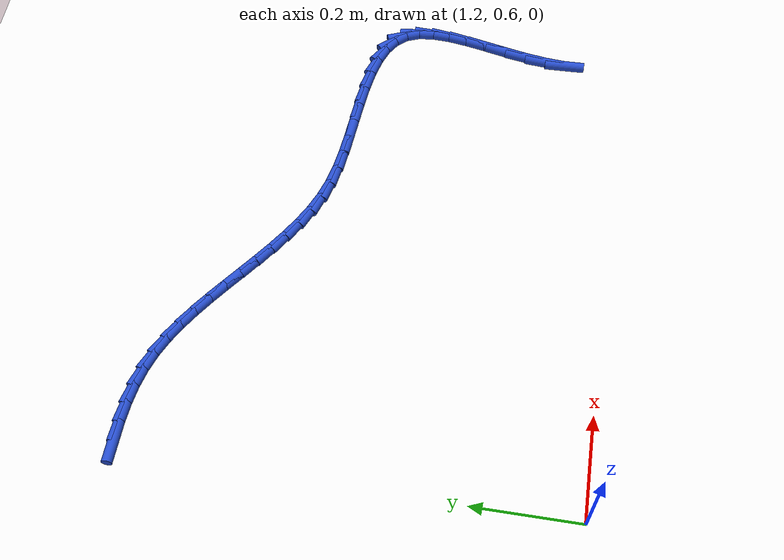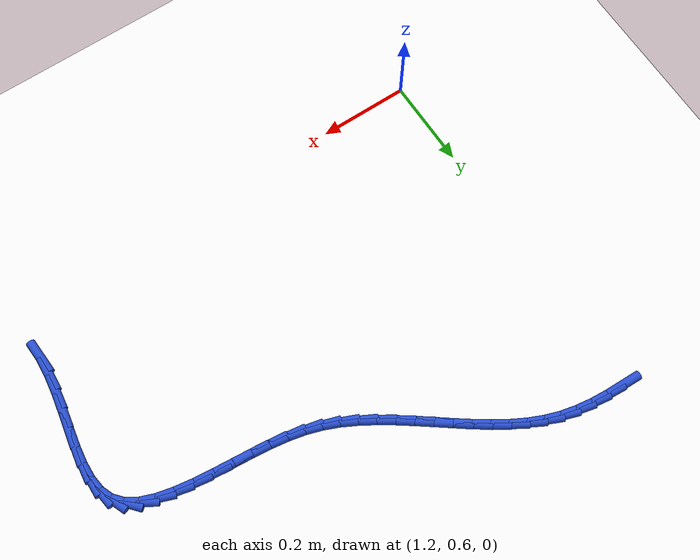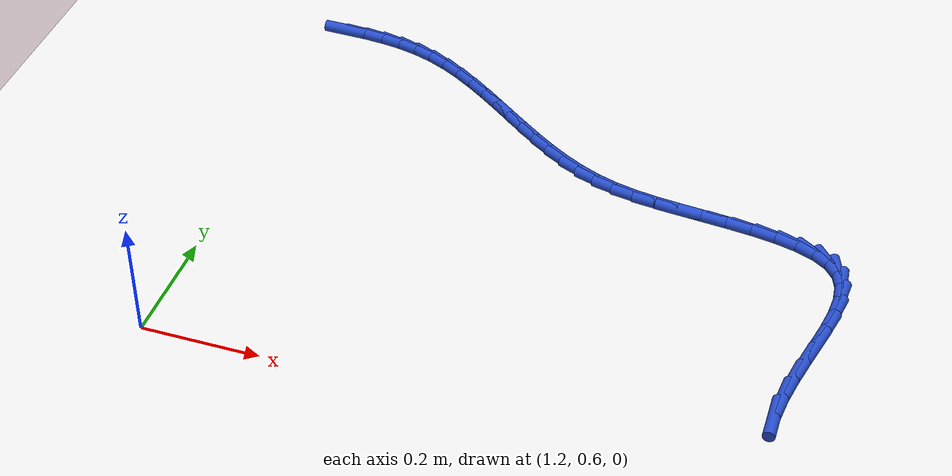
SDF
<sdf version="1.6">
 <world name="default">
  <model name="ground_plane">
   <static>1</static>
   <link name="link">
    <collision name="collision">
     <geometry><plane><normal>0 0 1</normal><size>100 100</size></plane></geometry>
     <surface><friction><ode><mu>100</mu><mu2>50</mu2></ode></friction></surface>
    </collision>
    <visual name="visual">
     <cast_shadows>0</cast_shadows>
     <geometry><plane><normal>0 0 1</normal><size>100 100</size></plane></geometry>
     <material>
      <script><uri>file://media/materials/scripts/gazebo.material</uri><name>Gazebo/WhiteGlow</name></script>
     </material>
    </visual>
   </link>
  </model>
  <model name="line">
   <link name="link_57">
    <pose>1.214163440559218 1.4207743845941585 0.01 0 1.57 -0.021638825132130456</pose>
    <collision name="collision">
     <geometry><cylinder><radius>0.01</radius><length>0.08</length></cylinder></geometry>
    </collision>
    <visual name="visual">
     <material>
      <script><name>Gazebo/Blue</name><uri>file://media/materials/scripts/gazebo.material</uri></script>
     </material>
     <geometry><cylinder><radius>0.01</radius><length>0.08</length></cylinder></geometry>
    </visual>
   </link>
   <link name="link_58">
    <pose>1.2526661764890905 1.4199411005615779 0.01 0 1.57 -0.07604416616218247</pose>
    <collision name="collision">
     <geometry><cylinder><radius>0.01</radius><length>0.08</length></cylinder></geometry>
    </collision>
    <visual name="visual">
     <material>
      <script><name>Gazebo/Blue</name><uri>file://media/materials/scripts/gazebo.material</uri></script>
     </material>
     <geometry><cylinder><radius>0.01</radius><length>0.08</length></cylinder></geometry>
    </visual>
   </link>
   <link name="link_59">
    <pose>1.2893979614746258 1.4171424659509002 0.01 0 1.57 -0.1457865926980805</pose>
    <collision name="collision">
     <geometry><cylinder><radius>0.01</radius><length>0.08</length></cylinder></geometry>
    </collision>
    <visual name="visual">
     <material>
      <script><name>Gazebo/Blue</name><uri>file://media/materials/scripts/gazebo.material</uri></script>
     </material>
     <geometry><cylinder><radius>0.01</radius><length>0.08</length></cylinder></geometry>
    </visual>
   </link>
   <link name="link_60">
    <pose>1.3246341572912177 1.4119687957187745 0.01 0 1.57 -0.22982657658886604</pose>
    <collision name="collision">
     <geometry><cylinder><radius>0.01</radius><length>0.08</length></cylinder></geometry>
    </collision>
    <visual name="visual">
     <material>
      <script><name>Gazebo/Blue</name><uri>file://media/materials/scripts/gazebo.material</uri></script>
     </material>
     <geometry><cylinder><radius>0.01</radius><length>0.08</length></cylinder></geometry>
    </visual>
   </link>
   <link name="link_61">
    <pose>1.3586501257142614 1.4040104048218491 0.01 0 1.57 -0.32525071271518846</pose>
    <collision name="collision">
     <geometry><cylinder><radius>0.01</radius><length>0.08</length></cylinder></geometry>
    </collision>
    <visual name="visual">
     <material>
      <script><name>Gazebo/Blue</name><uri>file://media/materials/scripts/gazebo.material</uri></script>
     </material>
     <geometry><cylinder><radius>0.01</radius><length>0.08</length></cylinder></geometry>
    </visual>
   </link>
   <link name="link_62">
    <pose>1.3917211790418753 1.392857954150063 0.01 0 1.57 -0.42168953792731234</pose>
    <collision name="collision">
     <geometry><cylinder><radius>0.01</radius><length>0.08</length></cylinder></geometry>
    </collision>
    <visual name="visual">
     <material>
      <script><name>Gazebo/Blue</name><uri>file://media/materials/scripts/gazebo.material</uri></script>
     </material>
     <geometry><cylinder><radius>0.01</radius><length>0.08</length></cylinder></geometry>
    </visual>
   </link>
   <link name="link_63">
    <pose>1.424088924020396 1.3783377657619418 0.01 0 1.57 -0.5008743759767215</pose>
    <collision name="collision">
     <geometry><cylinder><radius>0.01</radius><length>0.08</length></cylinder></geometry>
    </collision>
    <visual name="visual">
     <material>
      <script><name>Gazebo/Blue</name><uri>file://media/materials/scripts/gazebo.material</uri></script>
     </material>
     <geometry><cylinder><radius>0.01</radius><length>0.08</length></cylinder></geometry>
    </visual>
   </link>
   <link name="link_64">
    <pose>1.455902636222606 1.360921719231152 0.01 0 1.57 -0.5611075231553009</pose>
    <collision name="collision">
     <geometry><cylinder><radius>0.01</radius><length>0.08</length></cylinder></geometry>
    </collision>
    <visual name="visual">
     <material>
      <script><name>Gazebo/Blue</name><uri>file://media/materials/scripts/gazebo.material</uri></script>
     </material>
     <geometry><cylinder><radius>0.01</radius><length>0.08</length></cylinder></geometry>
    </visual>
   </link>
   <link name="link_65">
    <pose>1.4872959228110223 1.3411912439140503 0.01 0 1.57 -0.6039832337709676</pose>
    <collision name="collision">
     <geometry><cylinder><radius>0.01</radius><length>0.08</length></cylinder></geometry>
    </collision>
    <visual name="visual">
     <material>
      <script><name>Gazebo/Blue</name><uri>file://media/materials/scripts/gazebo.material</uri></script>
     </material>
     <geometry><cylinder><radius>0.01</radius><length>0.08</length></cylinder></geometry>
    </visual>
   </link>
   <link name="link_66">
    <pose>1.518402390948162 1.3197277691669929 0.01 0 1.57 -0.6309816007855725</pose>
    <collision name="collision">
     <geometry><cylinder><radius>0.01</radius><length>0.08</length></cylinder></geometry>
    </collision>
    <visual name="visual">
     <material>
      <script><name>Gazebo/Blue</name><uri>file://media/materials/scripts/gazebo.material</uri></script>
     </material>
     <geometry><cylinder><radius>0.01</radius><length>0.08</length></cylinder></geometry>
    </visual>
   </link>
   <link name="link_67">
    <pose>1.549355647796541 1.297112724346337 0.01 0 1.57 -0.6431895771016136</pose>
    <collision name="collision">
     <geometry><cylinder><radius>0.01</radius><length>0.08</length></cylinder></geometry>
    </collision>
    <visual name="visual">
     <material>
      <script><name>Gazebo/Blue</name><uri>file://media/materials/scripts/gazebo.material</uri></script>
     </material>
     <geometry><cylinder><radius>0.01</radius><length>0.08</length></cylinder></geometry>
    </visual>
   </link>
   <link name="link_68">
    <pose>1.5802893005186762 1.2739275388084388 0.01 0 1.57 -0.6411916072646232</pose>
    <collision name="collision">
     <geometry><cylinder><radius>0.01</radius><length>0.08</length></cylinder></geometry>
    </collision>
    <visual name="visual">
     <material>
      <script><name>Gazebo/Blue</name><uri>file://media/materials/scripts/gazebo.material</uri></script>
     </material>
     <geometry><cylinder><radius>0.01</radius><length>0.08</length></cylinder></geometry>
    </visual>
   </link>
   <link name="link_69">
    <pose>1.611336956277084 1.2507536419096557 0.01 0 1.57 -0.625044790131475</pose>
    <collision name="collision">
     <geometry><cylinder><radius>0.01</radius><length>0.08</length></cylinder></geometry>
    </collision>
    <visual name="visual">
     <material>
      <script><name>Gazebo/Blue</name><uri>file://media/materials/scripts/gazebo.material</uri></script>
     </material>
     <geometry><cylinder><radius>0.01</radius><length>0.08</length></cylinder></geometry>
    </visual>
   </link>
   <link name="link_70">
    <pose>1.6426322222342817 1.2281724630063429 0.01 0 1.57 -0.5943004446333864</pose>
    <collision name="collision">
     <geometry><cylinder><radius>0.01</radius><length>0.08</length></cylinder></geometry>
    </collision>
    <visual name="visual">
     <material>
      <script><name>Gazebo/Blue</name><uri>file://media/materials/scripts/gazebo.material</uri></script>
     </material>
     <geometry><cylinder><radius>0.01</radius><length>0.08</length></cylinder></geometry>
    </visual>
   </link>
   <link name="link_71">
    <pose>1.674308705552785 1.2067654314548584 0.01 0 1.57 -0.5480740448327908</pose>
    <collision name="collision">
     <geometry><cylinder><radius>0.01</radius><length>0.08</length></cylinder></geometry>
    </collision>
    <visual name="visual">
     <material>
      <script><name>Gazebo/Blue</name><uri>file://media/materials/scripts/gazebo.material</uri></script>
     </material>
     <geometry><cylinder><radius>0.01</radius><length>0.08</length></cylinder></geometry>
    </visual>
   </link>
   <link name="link_72">
    <pose>1.7065000133951111 1.187113976611558 0.01 0 1.57 -0.485201968358086</pose>
    <collision name="collision">
     <geometry><cylinder><radius>0.01</radius><length>0.08</length></cylinder></geometry>
    </collision>
    <visual name="visual">
     <material>
      <script><name>Gazebo/Blue</name><uri>file://media/materials/scripts/gazebo.material</uri></script>
     </material>
     <geometry><cylinder><radius>0.01</radius><length>0.08</length></cylinder></geometry>
    </visual>
   </link>
   <link name="link_73">
    <pose>1.7393397529237764 1.169799527832799 0.01 0 1.57 -0.40455703558338546</pose>
    <collision name="collision">
     <geometry><cylinder><radius>0.01</radius><length>0.08</length></cylinder></geometry>
    </collision>
    <visual name="visual">
     <material>
      <script><name>Gazebo/Blue</name><uri>file://media/materials/scripts/gazebo.material</uri></script>
     </material>
     <geometry><cylinder><radius>0.01</radius><length>0.08</length></cylinder></geometry>
    </visual>
   </link>
   <link name="link_74">
    <pose>1.7729615313012979 1.1554035144749373 0.01 0 1.57 -0.3084606772872467</pose>
    <collision name="collision">
     <geometry><cylinder><radius>0.01</radius><length>0.08</length></cylinder></geometry>
    </collision>
    <visual name="visual">
     <material>
      <script><name>Gazebo/Blue</name><uri>file://media/materials/scripts/gazebo.material</uri></script>
     </material>
     <geometry><cylinder><radius>0.01</radius><length>0.08</length></cylinder></geometry>
    </visual>
   </link>
   <link name="link_75">
    <pose>1.8075627523595643 1.1443784904529946 0.01 0 1.57 -0.21867672097457747</pose>
    <collision name="collision">
     <geometry><cylinder><radius>0.01</radius><length>0.08</length></cylinder></geometry>
    </collision>
    <visual name="visual">
     <material>
      <script><name>Gazebo/Blue</name><uri>file://media/materials/scripts/gazebo.material</uri></script>
     </material>
     <geometry><cylinder><radius>0.01</radius><length>0.08</length></cylinder></geometry>
    </visual>
   </link>
   <link name="link_76">
    <pose>1.8437576989937077 1.1363348736616257 0.01 0 1.57 -0.1490043052689901</pose>
    <collision name="collision">
     <geometry><cylinder><radius>0.01</radius><length>0.08</length></cylinder></geometry>
    </collision>
    <visual name="visual">
     <material>
      <script><name>Gazebo/Blue</name><uri>file://media/materials/scripts/gazebo.material</uri></script>
     </material>
     <geometry><cylinder><radius>0.01</radius><length>0.08</length></cylinder></geometry>
    </visual>
   </link>
   <link name="link_77">
    <pose>1.882327775110086 1.1305448521405217 0.01 0 1.57 -0.10333900747077276</pose>
    <collision name="collision">
     <geometry><cylinder><radius>0.01</radius><length>0.08</length></cylinder></geometry>
    </collision>
    <visual name="visual">
     <material>
      <script><name>Gazebo/Blue</name><uri>file://media/materials/scripts/gazebo.material</uri></script>
     </material>
     <geometry><cylinder><radius>0.01</radius><length>0.08</length></cylinder></geometry>
    </visual>
   </link>
   <link name="link_78">
    <pose>1.9235994927482387 1.126264626840444 0.01 0 1.57 -0.08272444628257421</pose>
    <collision name="collision">
     <geometry><cylinder><radius>0.01</radius><length>0.08</length></cylinder></geometry>
    </collision>
    <visual name="visual">
     <material>
      <script><name>Gazebo/Blue</name><uri>file://media/materials/scripts/gazebo.material</uri></script>
     </material>
     <geometry><cylinder><radius>0.01</radius><length>0.08</length></cylinder></geometry>
    </visual>
   </link>
   <link name="link_79">
    <pose>1.9665302645055733 1.122705079086782 0.01 0 1.57 -0.08380394696337702</pose>
    <collision name="collision">
     <geometry><cylinder><radius>0.01</radius><length>0.08</length></cylinder></geometry>
    </collision>
    <visual name="visual">
     <material>
      <script><name>Gazebo/Blue</name><uri>file://media/materials/scripts/gazebo.material</uri></script>
     </material>
     <geometry><cylinder><radius>0.01</radius><length>0.08</length></cylinder></geometry>
    </visual>
   </link>
   <link name="link_80">
    <pose>2.0098212394518944 1.1190686074266045 0.01 0 1.57 -0.10611113861365937</pose>
    <collision name="collision">
     <geometry><cylinder><radius>0.01</radius><length>0.08</length></cylinder></geometry>
    </collision>
    <visual name="visual">
     <material>
      <script><name>Gazebo/Blue</name><uri>file://media/materials/scripts/gazebo.material</uri></script>
     </material>
     <geometry><cylinder><radius>0.01</radius><length>0.08</length></cylinder></geometry>
    </visual>
   </link>
   <link name="link_81">
    <pose>2.0521735666570105 1.1145576104069814 0.01 0 1.57 -0.15293208608838985</pose>
    <collision name="collision">
     <geometry><cylinder><radius>0.01</radius><length>0.08</length></cylinder></geometry>
    </collision>
    <visual name="visual">
     <material>
      <script><name>Gazebo/Blue</name><uri>file://media/materials/scripts/gazebo.material</uri></script>
     </material>
     <geometry><cylinder><radius>0.01</radius><length>0.08</length></cylinder></geometry>
    </visual>
   </link>
   <link name="link_82">
    <pose>2.092288395190728 1.1083744865749805 0.01 0 1.57 -0.23228584561074656</pose>
    <collision name="collision">
     <geometry><cylinder><radius>0.01</radius><length>0.08</length></cylinder></geometry>
    </collision>
    <visual name="visual">
     <material>
      <script><name>Gazebo/Blue</name><uri>file://media/materials/scripts/gazebo.material</uri></script>
     </material>
     <geometry><cylinder><radius>0.01</radius><length>0.08</length></cylinder></geometry>
    </visual>
   </link>
   <link name="link_83">
    <pose>2.128866874122855 1.099721634477672 0.01 0 1.57 -0.35922498935018055</pose>
    <collision name="collision">
     <geometry><cylinder><radius>0.01</radius><length>0.08</length></cylinder></geometry>
    </collision>
    <visual name="visual">
     <material>
      <script><name>Gazebo/Blue</name><uri>file://media/materials/scripts/gazebo.material</uri></script>
     </material>
     <geometry><cylinder><radius>0.01</radius><length>0.08</length></cylinder></geometry>
    </visual>
   </link>
   <link name="link_84">
    <pose>2.1606101525231964 1.0878014526621236 0.01 0 1.57 -0.5580191498274736</pose>
    <collision name="collision">
     <geometry><cylinder><radius>0.01</radius><length>0.08</length></cylinder></geometry>
    </collision>
    <visual name="visual">
     <material>
      <script><name>Gazebo/Blue</name><uri>file://media/materials/scripts/gazebo.material</uri></script>
     </material>
     <geometry><cylinder><radius>0.01</radius><length>0.08</length></cylinder></geometry>
    </visual>
   </link>
   <link name="link_85">
    <pose>2.186219379461561 1.0718163396754048 0.01 0 1.57 -0.8534534296741152</pose>
    <collision name="collision">
     <geometry><cylinder><radius>0.01</radius><length>0.08</length></cylinder></geometry>
    </collision>
    <visual name="visual">
     <material>
      <script><name>Gazebo/Blue</name><uri>file://media/materials/scripts/gazebo.material</uri></script>
     </material>
     <geometry><cylinder><radius>0.01</radius><length>0.08</length></cylinder></geometry>
    </visual>
   </link>
   <link name="link_86">
    <pose>2.2044028681573136 1.0509727443366934 0.01 0 1.57 -1.1930205462965937</pose>
    <collision name="collision">
     <geometry><cylinder><radius>0.01</radius><length>0.08</length></cylinder></geometry>
    </collision>
    <visual name="visual">
     <material>
      <script><name>Gazebo/Blue</name><uri>file://media/materials/scripts/gazebo.material</uri></script>
     </material>
     <geometry><cylinder><radius>0.01</radius><length>0.08</length></cylinder></geometry>
    </visual>
   </link>
   <link name="link_87">
    <pose>2.2147251841671944 1.0249612001331447 0.01 0 1.57 -1.4508265972342895</pose>
    <collision name="collision">
     <geometry><cylinder><radius>0.01</radius><length>0.08</length></cylinder></geometry>
    </collision>
    <visual name="visual">
     <material>
      <script><name>Gazebo/Blue</name><uri>file://media/materials/scripts/gazebo.material</uri></script>
     </material>
     <geometry><cylinder><radius>0.01</radius><length>0.08</length></cylinder></geometry>
    </visual>
   </link>
   <link name="link_88">
    <pose>2.218408186314976 0.9944091959631775 0.01 0 1.57 1.525863538439728</pose>
    <collision name="collision">
     <geometry><cylinder><radius>0.01</radius><length>0.08</length></cylinder></geometry>
    </collision>
    <visual name="visual">
     <material>
      <script><name>Gazebo/Blue</name><uri>file://media/materials/scripts/gazebo.material</uri></script>
     </material>
     <geometry><cylinder><radius>0.01</radius><length>0.08</length></cylinder></geometry>
    </visual>
   </link>
   <link name="link_89">
    <pose>2.2168633560496174 0.9600514244098605 0.01 0 1.57 1.4285274099313157</pose>
    <collision name="collision">
     <geometry><cylinder><radius>0.01</radius><length>0.08</length></cylinder></geometry>
    </collision>
    <visual name="visual">
     <material>
      <script><name>Gazebo/Blue</name><uri>file://media/materials/scripts/gazebo.material</uri></script>
     </material>
     <geometry><cylinder><radius>0.01</radius><length>0.08</length></cylinder></geometry>
    </visual>
   </link>
   <link name="link_90">
    <pose>2.211502174820081 0.9226225780562602 0.01 0 1.57 1.3779264387405141</pose>
    <collision name="collision">
     <geometry><cylinder><radius>0.01</radius><length>0.08</length></cylinder></geometry>
    </collision>
    <visual name="visual">
     <material>
      <script><name>Gazebo/Blue</name><uri>file://media/materials/scripts/gazebo.material</uri></script>
     </material>
     <geometry><cylinder><radius>0.01</radius><length>0.08</length></cylinder></geometry>
    </visual>
   </link>
   <link name="link_91">
    <pose>2.2037361240753266 0.8828573494854465 0.01 0 1.57 1.3621287807834386</pose>
    <collision name="collision">
     <geometry><cylinder><radius>0.01</radius><length>0.08</length></cylinder></geometry>
    </collision>
    <visual name="visual">
     <material>
      <script><name>Gazebo/Blue</name><uri>file://media/materials/scripts/gazebo.material</uri></script>
     </material>
     <geometry><cylinder><radius>0.01</radius><length>0.08</length></cylinder></geometry>
    </visual>
   </link>
   <link name="link_92">
    <pose>2.194976685264315 0.8414904312804862 0.01 0 1.57 1.3758024110035751</pose>
    <collision name="collision">
     <geometry><cylinder><radius>0.01</radius><length>0.08</length></cylinder></geometry>
    </collision>
    <visual name="visual">
     <material>
      <script><name>Gazebo/Blue</name><uri>file://media/materials/scripts/gazebo.material</uri></script>
     </material>
     <geometry><cylinder><radius>0.01</radius><length>0.08</length></cylinder></geometry>
    </visual>
   </link>
   <link name="link_93">
    <pose>2.186635339836007 0.7992565160244478 0.01 0 1.57 1.418287870852942</pose>
    <collision name="collision">
     <geometry><cylinder><radius>0.01</radius><length>0.08</length></cylinder></geometry>
    </collision>
    <visual name="visual">
     <material>
      <script><name>Gazebo/Blue</name><uri>file://media/materials/scripts/gazebo.material</uri></script>
     </material>
     <geometry><cylinder><radius>0.01</radius><length>0.08</length></cylinder></geometry>
    </visual>
   </link>
   <link name="link_94">
    <pose>2.1801235692393655 0.7568902963003992 0.01 0 1.57 1.4926413280717066</pose>
    <collision name="collision">
     <geometry><cylinder><radius>0.01</radius><length>0.08</length></cylinder></geometry>
    </collision>
    <visual name="visual">
     <material>
      <script><name>Gazebo/Blue</name><uri>file://media/materials/scripts/gazebo.material</uri></script>
     </material>
     <geometry><cylinder><radius>0.01</radius><length>0.08</length></cylinder></geometry>
    </visual>
   </link>
   <link name="link_95">
    <pose>2.1768528549233483 0.7151264646914086 0.01 0 1.57 -1.5366287121556803</pose>
    <collision name="collision">
     <geometry><cylinder><radius>0.01</radius><length>0.08</length></cylinder></geometry>
    </collision>
    <visual name="visual">
     <material>
      <script><name>Gazebo/Blue</name><uri>file://media/materials/scripts/gazebo.material</uri></script>
     </material>
     <geometry><cylinder><radius>0.01</radius><length>0.08</length></cylinder></geometry>
    </visual>
   </link>
  </model>
 </world>
</sdf>
